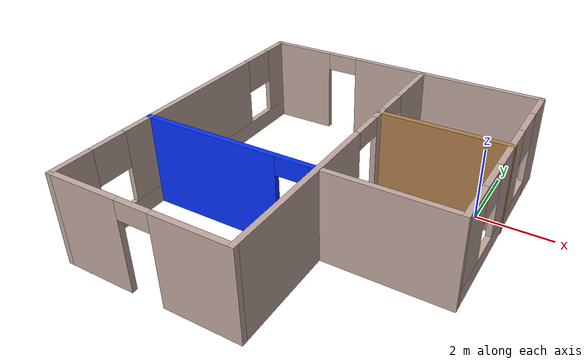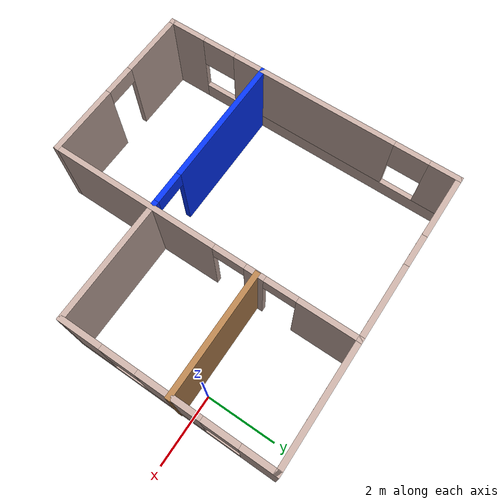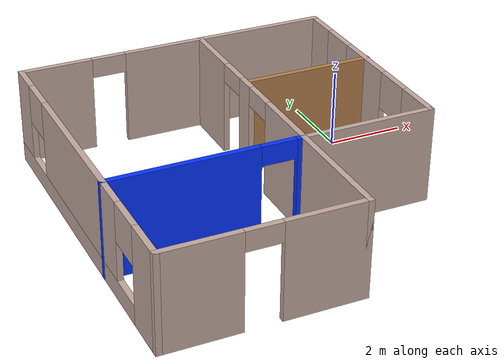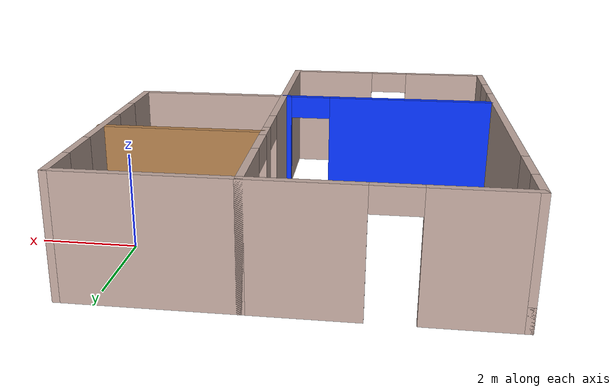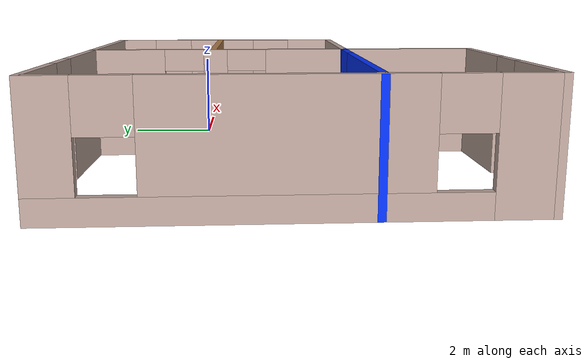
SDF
<?xml version='1.0'?>
<sdf version='1.7'>
  <model name='my_home'>
    <pose>-3.42702 -1.98412 0 0 -0 0</pose>
    <link name='Wall_0'>
      <pose>-1.68421 4.425 0 0 -0 0</pose>
      <visual name='Wall_0_Visual_0'>
        <pose>-1.54746 0 1.25 0 -0 0</pose>
        <geometry>
          <box>
            <size>1.90508 0.15 2.5</size>
          </box>
        </geometry>
        <material>
          <script>
            <uri>file://media/materials/scripts/gazebo.material</uri>
            <name>Gazebo/Grey</name>
          </script>
          <ambient>0.760784 0.662745 0.627451 1</ambient>
        </material>
        <meta>
          <layer>0</layer>
        </meta>
      </visual>
      <collision name='Wall_0_Collision_0'>
        <geometry>
          <box>
            <size>1.90508 0.15 2.5</size>
          </box>
        </geometry>
        <pose>-1.54746 0 1.25 0 -0 0</pose>
      </collision>
      <visual name='Wall_0_Visual_1'>
        <pose>1.40254 0 1.25 0 -0 0</pose>
        <geometry>
          <box>
            <size>2.19492 0.15 2.5</size>
          </box>
        </geometry>
        <material>
          <script>
            <uri>file://media/materials/scripts/gazebo.material</uri>
            <name>Gazebo/Grey</name>
          </script>
          <ambient>0.760784 0.662745 0.627451 1</ambient>
        </material>
        <meta>
          <layer>0</layer>
        </meta>
      </visual>
      <collision name='Wall_0_Collision_1'>
        <geometry>
          <box>
            <size>2.19492 0.15 2.5</size>
          </box>
        </geometry>
        <pose>1.40254 0 1.25 0 -0 0</pose>
      </collision>
      <visual name='Wall_0_Visual_2'>
        <pose>-0.144922 0 2.25 0 -0 0</pose>
        <geometry>
          <box>
            <size>0.9 0.15 0.5</size>
          </box>
        </geometry>
        <material>
          <script>
            <uri>file://media/materials/scripts/gazebo.material</uri>
            <name>Gazebo/Grey</name>
          </script>
          <ambient>0.760784 0.662745 0.627451 1</ambient>
        </material>
        <meta>
          <layer>0</layer>
        </meta>
      </visual>
      <collision name='Wall_0_Collision_2'>
        <geometry>
          <box>
            <size>0.9 0.15 0.5</size>
          </box>
        </geometry>
        <pose>-0.144922 0 2.25 0 -0 0</pose>
      </collision>
    </link>
    <link name='Wall_1'>
      <pose>0.740788 0 0 0 -0 -1.5708</pose>
      <visual name='Wall_1_Visual_0'>
        <pose>-3.63444 0 1.25 0 -0 0</pose>
        <geometry>
          <box>
            <size>1.73112 0.15 2.5</size>
          </box>
        </geometry>
        <material>
          <script>
            <uri>file://media/materials/scripts/gazebo.material</uri>
            <name>Gazebo/Grey</name>
          </script>
          <ambient>0.760784 0.662745 0.627451 1</ambient>
        </material>
        <meta>
          <layer>0</layer>
        </meta>
      </visual>
      <collision name='Wall_1_Collision_0'>
        <geometry>
          <box>
            <size>1.73112 0.15 2.5</size>
          </box>
        </geometry>
        <pose>-3.63444 0 1.25 0 -0 0</pose>
      </collision>
      <visual name='Wall_1_Visual_1'>
        <pose>-1.59479 0 1.25 0 -0 0</pose>
        <geometry>
          <box>
            <size>0.548177 0.15 2.5</size>
          </box>
        </geometry>
        <material>
          <script>
            <uri>file://media/materials/scripts/gazebo.material</uri>
            <name>Gazebo/Grey</name>
          </script>
          <ambient>0.760784 0.662745 0.627451 1</ambient>
        </material>
        <meta>
          <layer>0</layer>
        </meta>
      </visual>
      <collision name='Wall_1_Collision_1'>
        <geometry>
          <box>
            <size>0.548177 0.15 2.5</size>
          </box>
        </geometry>
        <pose>-1.59479 0 1.25 0 -0 0</pose>
      </collision>
      <visual name='Wall_1_Visual_2'>
        <pose>2.03965 0 1.25 0 -0 0</pose>
        <geometry>
          <box>
            <size>4.92071 0.15 2.5</size>
          </box>
        </geometry>
        <material>
          <script>
            <uri>file://media/materials/scripts/gazebo.material</uri>
            <name>Gazebo/Grey</name>
          </script>
          <ambient>0.760784 0.662745 0.627451 1</ambient>
        </material>
        <meta>
          <layer>0</layer>
        </meta>
      </visual>
      <collision name='Wall_1_Collision_2'>
        <geometry>
          <box>
            <size>4.92071 0.15 2.5</size>
          </box>
        </geometry>
        <pose>2.03965 0 1.25 0 -0 0</pose>
      </collision>
      <visual name='Wall_1_Visual_3'>
        <pose>-2.31888 0 2.25 0 -0 0</pose>
        <geometry>
          <box>
            <size>0.9 0.15 0.5</size>
          </box>
        </geometry>
        <material>
          <script>
            <uri>file://media/materials/scripts/gazebo.material</uri>
            <name>Gazebo/Grey</name>
          </script>
          <ambient>0.760784 0.662745 0.627451 1</ambient>
        </material>
        <meta>
          <layer>0</layer>
        </meta>
      </visual>
      <collision name='Wall_1_Collision_3'>
        <geometry>
          <box>
            <size>0.9 0.15 0.5</size>
          </box>
        </geometry>
        <pose>-2.31888 0 2.25 0 -0 0</pose>
      </collision>
      <visual name='Wall_1_Visual_4'>
        <pose>-0.870706 0 2.25 0 -0 0</pose>
        <geometry>
          <box>
            <size>0.9 0.15 0.5</size>
          </box>
        </geometry>
        <material>
          <script>
            <uri>file://media/materials/scripts/gazebo.material</uri>
            <name>Gazebo/Grey</name>
          </script>
          <ambient>0.760784 0.662745 0.627451 1</ambient>
        </material>
        <meta>
          <layer>0</layer>
        </meta>
      </visual>
      <collision name='Wall_1_Collision_4'>
        <geometry>
          <box>
            <size>0.9 0.15 0.5</size>
          </box>
        </geometry>
        <pose>-0.870706 0 2.25 0 -0 0</pose>
      </collision>
    </link>
    <link name='Wall_11'>
      <collision name='Wall_11_Collision'>
        <geometry>
          <box>
            <size>3.5 0.15 2.5</size>
          </box>
        </geometry>
        <pose>0 0 1.25 0 -0 0</pose>
      </collision>
      <visual name='Wall_11_Visual'>
        <pose>0 0 1.25 0 -0 0</pose>
        <geometry>
          <box>
            <size>3.5 0.15 2.5</size>
          </box>
        </geometry>
        <material>
          <script>
            <uri>file://media/materials/scripts/gazebo.material</uri>
            <name>Gazebo/Wood</name>
          </script>
          <ambient>0.760784 0.662745 0.627451 1</ambient>
        </material>
        <meta>
          <layer>0</layer>
        </meta>
      </visual>
      <pose>2.43421 1.64414 0 0 -0 3.14159</pose>
    </link>
    <link name='Wall_2'>
      <pose>-1.68421 -4.425 0 0 -0 3.14159</pose>
      <visual name='Wall_2_Visual_0'>
        <pose>-1.45282 0 1.25 0 -0 0</pose>
        <geometry>
          <box>
            <size>2.09435 0.15 2.5</size>
          </box>
        </geometry>
        <material>
          <script>
            <uri>file://media/materials/scripts/gazebo.material</uri>
            <name>Gazebo/Grey</name>
          </script>
          <ambient>0.760784 0.662745 0.627451 1</ambient>
        </material>
        <meta>
          <layer>0</layer>
        </meta>
      </visual>
      <collision name='Wall_2_Collision_0'>
        <geometry>
          <box>
            <size>2.09435 0.15 2.5</size>
          </box>
        </geometry>
        <pose>-1.45282 0 1.25 0 -0 0</pose>
      </collision>
      <visual name='Wall_2_Visual_1'>
        <pose>1.49718 0 1.25 0 -0 0</pose>
        <geometry>
          <box>
            <size>2.00565 0.15 2.5</size>
          </box>
        </geometry>
        <material>
          <script>
            <uri>file://media/materials/scripts/gazebo.material</uri>
            <name>Gazebo/Grey</name>
          </script>
          <ambient>0.760784 0.662745 0.627451 1</ambient>
        </material>
        <meta>
          <layer>0</layer>
        </meta>
      </visual>
      <collision name='Wall_2_Collision_1'>
        <geometry>
          <box>
            <size>2.00565 0.15 2.5</size>
          </box>
        </geometry>
        <pose>1.49718 0 1.25 0 -0 0</pose>
      </collision>
      <visual name='Wall_2_Visual_2'>
        <pose>0.044354 0 2.25 0 -0 0</pose>
        <geometry>
          <box>
            <size>0.9 0.15 0.5</size>
          </box>
        </geometry>
        <material>
          <script>
            <uri>file://media/materials/scripts/gazebo.material</uri>
            <name>Gazebo/Grey</name>
          </script>
          <ambient>0.760784 0.662745 0.627451 1</ambient>
        </material>
        <meta>
          <layer>0</layer>
        </meta>
      </visual>
      <collision name='Wall_2_Collision_2'>
        <geometry>
          <box>
            <size>0.9 0.15 0.5</size>
          </box>
        </geometry>
        <pose>0.044354 0 2.25 0 -0 0</pose>
      </collision>
    </link>
    <link name='Wall_3'>
      <pose>-4.10921 0 0 0 -0 1.5708</pose>
      <visual name='Wall_3_Visual_0'>
        <pose>-3.91509 0 1.25 0 -0 0</pose>
        <geometry>
          <box>
            <size>1.16981 0.15 2.5</size>
          </box>
        </geometry>
        <material>
          <script>
            <uri>file://media/materials/scripts/gazebo.material</uri>
            <name>Gazebo/Grey</name>
          </script>
          <ambient>0.760784 0.662745 0.627451 1</ambient>
        </material>
        <meta>
          <layer>0</layer>
        </meta>
      </visual>
      <collision name='Wall_3_Collision_0'>
        <geometry>
          <box>
            <size>1.16981 0.15 2.5</size>
          </box>
        </geometry>
        <pose>-3.91509 0 1.25 0 -0 0</pose>
      </collision>
      <visual name='Wall_3_Visual_1'>
        <pose>0.584905 0 0.25 0 -0 0</pose>
        <geometry>
          <box>
            <size>7.83019 0.15 0.5</size>
          </box>
        </geometry>
        <material>
          <script>
            <uri>file://media/materials/scripts/gazebo.material</uri>
            <name>Gazebo/Grey</name>
          </script>
          <ambient>0.760784 0.662745 0.627451 1</ambient>
        </material>
        <meta>
          <layer>0</layer>
        </meta>
      </visual>
      <collision name='Wall_3_Collision_1'>
        <geometry>
          <box>
            <size>7.83019 0.15 0.5</size>
          </box>
        </geometry>
        <pose>0.584905 0 0.25 0 -0 0</pose>
      </collision>
      <visual name='Wall_3_Visual_2'>
        <pose>0.136561 0 1.5 0 -0 0</pose>
        <geometry>
          <box>
            <size>4.9335 0.15 2</size>
          </box>
        </geometry>
        <material>
          <script>
            <uri>file://media/materials/scripts/gazebo.material</uri>
            <name>Gazebo/Grey</name>
          </script>
          <ambient>0.760784 0.662745 0.627451 1</ambient>
        </material>
        <meta>
          <layer>0</layer>
        </meta>
      </visual>
      <collision name='Wall_3_Collision_2'>
        <geometry>
          <box>
            <size>4.9335 0.15 2</size>
          </box>
        </geometry>
        <pose>0.136561 0 1.5 0 -0 0</pose>
      </collision>
      <visual name='Wall_3_Visual_3'>
        <pose>4.05166 0 1.5 0 -0 0</pose>
        <geometry>
          <box>
            <size>0.896687 0.15 2</size>
          </box>
        </geometry>
        <material>
          <script>
            <uri>file://media/materials/scripts/gazebo.material</uri>
            <name>Gazebo/Grey</name>
          </script>
          <ambient>0.760784 0.662745 0.627451 1</ambient>
        </material>
        <meta>
          <layer>0</layer>
        </meta>
      </visual>
      <collision name='Wall_3_Collision_3'>
        <geometry>
          <box>
            <size>0.896687 0.15 2</size>
          </box>
        </geometry>
        <pose>4.05166 0 1.5 0 -0 0</pose>
      </collision>
      <visual name='Wall_3_Visual_4'>
        <pose>-2.83019 0 2 0 -0 0</pose>
        <geometry>
          <box>
            <size>1 0.15 1</size>
          </box>
        </geometry>
        <material>
          <script>
            <uri>file://media/materials/scripts/gazebo.material</uri>
            <name>Gazebo/Grey</name>
          </script>
          <ambient>0.760784 0.662745 0.627451 1</ambient>
        </material>
        <meta>
          <layer>0</layer>
        </meta>
      </visual>
      <collision name='Wall_3_Collision_4'>
        <geometry>
          <box>
            <size>1 0.15 1</size>
          </box>
        </geometry>
        <pose>-2.83019 0 2 0 -0 0</pose>
      </collision>
      <visual name='Wall_3_Visual_5'>
        <pose>3.10331 0 2 0 -0 0</pose>
        <geometry>
          <box>
            <size>1 0.15 1</size>
          </box>
        </geometry>
        <material>
          <script>
            <uri>file://media/materials/scripts/gazebo.material</uri>
            <name>Gazebo/Grey</name>
          </script>
          <ambient>0.760784 0.662745 0.627451 1</ambient>
        </material>
        <meta>
          <layer>0</layer>
        </meta>
      </visual>
      <collision name='Wall_3_Collision_5'>
        <geometry>
          <box>
            <size>1 0.15 1</size>
          </box>
        </geometry>
        <pose>3.10331 0 2 0 -0 0</pose>
      </collision>
    </link>
    <link name='Wall_5'>
      <collision name='Wall_5_Collision'>
        <geometry>
          <box>
            <size>3.5 0.15 2.5</size>
          </box>
        </geometry>
        <pose>0 0 1.25 0 -0 0</pose>
      </collision>
      <visual name='Wall_5_Visual'>
        <pose>0 0 1.25 0 -0 0</pose>
        <geometry>
          <box>
            <size>3.5 0.15 2.5</size>
          </box>
        </geometry>
        <material>
          <script>
            <uri>file://media/materials/scripts/gazebo.material</uri>
            <name>Gazebo/Grey</name>
          </script>
          <ambient>0.760784 0.662745 0.627451 1</ambient>
        </material>
        <meta>
          <layer>0</layer>
        </meta>
      </visual>
      <pose>2.41579 4.425 0 0 -0 0</pose>
    </link>
    <link name='Wall_6'>
      <pose>4.09079 1.5 0 0 -0 -1.5708</pose>
      <visual name='Wall_6_Visual_0'>
        <pose>-2.49132 0 1.25 0 -0 0</pose>
        <geometry>
          <box>
            <size>1.01737 0.15 2.5</size>
          </box>
        </geometry>
        <material>
          <script>
            <uri>file://media/materials/scripts/gazebo.material</uri>
            <name>Gazebo/Grey</name>
          </script>
          <ambient>0.760784 0.662745 0.627451 1</ambient>
        </material>
        <meta>
          <layer>0</layer>
        </meta>
      </visual>
      <collision name='Wall_6_Collision_0'>
        <geometry>
          <box>
            <size>1.01737 0.15 2.5</size>
          </box>
        </geometry>
        <pose>-2.49132 0 1.25 0 -0 0</pose>
      </collision>
      <visual name='Wall_6_Visual_1'>
        <pose>0.508684 0 0.25 0 -0 0</pose>
        <geometry>
          <box>
            <size>4.98263 0.15 0.5</size>
          </box>
        </geometry>
        <material>
          <script>
            <uri>file://media/materials/scripts/gazebo.material</uri>
            <name>Gazebo/Grey</name>
          </script>
          <ambient>0.760784 0.662745 0.627451 1</ambient>
        </material>
        <meta>
          <layer>0</layer>
        </meta>
      </visual>
      <collision name='Wall_6_Collision_1'>
        <geometry>
          <box>
            <size>4.98263 0.15 0.5</size>
          </box>
        </geometry>
        <pose>0.508684 0 0.25 0 -0 0</pose>
      </collision>
      <visual name='Wall_6_Visual_2'>
        <pose>-0.104852 0 1.5 0 -0 0</pose>
        <geometry>
          <box>
            <size>1.75556 0.15 2</size>
          </box>
        </geometry>
        <material>
          <script>
            <uri>file://media/materials/scripts/gazebo.material</uri>
            <name>Gazebo/Grey</name>
          </script>
          <ambient>0.760784 0.662745 0.627451 1</ambient>
        </material>
        <meta>
          <layer>0</layer>
        </meta>
      </visual>
      <collision name='Wall_6_Collision_2'>
        <geometry>
          <box>
            <size>1.75556 0.15 2</size>
          </box>
        </geometry>
        <pose>-0.104852 0 1.5 0 -0 0</pose>
      </collision>
      <visual name='Wall_6_Visual_3'>
        <pose>2.38646 0 1.5 0 -0 0</pose>
        <geometry>
          <box>
            <size>1.22707 0.15 2</size>
          </box>
        </geometry>
        <material>
          <script>
            <uri>file://media/materials/scripts/gazebo.material</uri>
            <name>Gazebo/Grey</name>
          </script>
          <ambient>0.760784 0.662745 0.627451 1</ambient>
        </material>
        <meta>
          <layer>0</layer>
        </meta>
      </visual>
      <collision name='Wall_6_Collision_3'>
        <geometry>
          <box>
            <size>1.22707 0.15 2</size>
          </box>
        </geometry>
        <pose>2.38646 0 1.5 0 -0 0</pose>
      </collision>
      <visual name='Wall_6_Visual_4'>
        <pose>-1.48263 0 2 0 -0 0</pose>
        <geometry>
          <box>
            <size>1 0.15 1</size>
          </box>
        </geometry>
        <material>
          <script>
            <uri>file://media/materials/scripts/gazebo.material</uri>
            <name>Gazebo/Grey</name>
          </script>
          <ambient>0.760784 0.662745 0.627451 1</ambient>
        </material>
        <meta>
          <layer>0</layer>
        </meta>
      </visual>
      <collision name='Wall_6_Collision_4'>
        <geometry>
          <box>
            <size>1 0.15 1</size>
          </box>
        </geometry>
        <pose>-1.48263 0 2 0 -0 0</pose>
      </collision>
      <visual name='Wall_6_Visual_5'>
        <pose>1.27293 0 2 0 -0 0</pose>
        <geometry>
          <box>
            <size>1 0.15 1</size>
          </box>
        </geometry>
        <material>
          <script>
            <uri>file://media/materials/scripts/gazebo.material</uri>
            <name>Gazebo/Grey</name>
          </script>
          <ambient>0.760784 0.662745 0.627451 1</ambient>
        </material>
        <meta>
          <layer>0</layer>
        </meta>
      </visual>
      <collision name='Wall_6_Collision_5'>
        <geometry>
          <box>
            <size>1 0.15 1</size>
          </box>
        </geometry>
        <pose>1.27293 0 2 0 -0 0</pose>
      </collision>
    </link>
    <link name='Wall_7'>
      <collision name='Wall_7_Collision'>
        <geometry>
          <box>
            <size>3.5 0.15 2.5</size>
          </box>
        </geometry>
        <pose>0 0 1.25 0 -0 0</pose>
      </collision>
      <visual name='Wall_7_Visual'>
        <pose>0 0 1.25 0 -0 0</pose>
        <geometry>
          <box>
            <size>3.5 0.15 2.5</size>
          </box>
        </geometry>
        <material>
          <script>
            <uri>file://media/materials/scripts/gazebo.material</uri>
            <name>Gazebo/Grey</name>
          </script>
          <ambient>0.760784 0.662745 0.627451 1</ambient>
        </material>
        <meta>
          <layer>0</layer>
        </meta>
      </visual>
      <pose>2.41579 -1.425 0 0 -0 3.14159</pose>
    </link>
    <link name='Wall_9'>
      <pose>-1.68421 -1.425 0 0 -0 3.14159</pose>
      <visual name='Wall_9_Visual_0'>
        <pose>-2.36799 0 1.25 0 -0 0</pose>
        <geometry>
          <box>
            <size>0.26402 0.15 2.5</size>
          </box>
        </geometry>
        <material>
          <script>
            <uri>file://media/materials/scripts/gazebo.material</uri>
            <name>Gazebo/Grey</name>
          </script>
          <ambient>0.0156863 0.2 1 1</ambient>
        </material>
        <meta>
          <layer>0</layer>
        </meta>
      </visual>
      <collision name='Wall_9_Collision_0'>
        <geometry>
          <box>
            <size>0.26402 0.15 2.5</size>
          </box>
        </geometry>
        <pose>-2.36799 0 1.25 0 -0 0</pose>
      </collision>
      <visual name='Wall_9_Visual_1'>
        <pose>0.58201 0 1.25 0 -0 0</pose>
        <geometry>
          <box>
            <size>3.83598 0.15 2.5</size>
          </box>
        </geometry>
        <material>
          <script>
            <uri>file://media/materials/scripts/gazebo.material</uri>
            <name>Gazebo/Grey</name>
          </script>
          <ambient>0.0156863 0.2 1 1</ambient>
        </material>
        <meta>
          <layer>0</layer>
        </meta>
      </visual>
      <collision name='Wall_9_Collision_1'>
        <geometry>
          <box>
            <size>3.83598 0.15 2.5</size>
          </box>
        </geometry>
        <pose>0.58201 0 1.25 0 -0 0</pose>
      </collision>
      <visual name='Wall_9_Visual_2'>
        <pose>-1.78598 0 2.25 0 -0 0</pose>
        <geometry>
          <box>
            <size>0.9 0.15 0.5</size>
          </box>
        </geometry>
        <material>
          <script>
            <uri>file://media/materials/scripts/gazebo.material</uri>
            <name>Gazebo/Grey</name>
          </script>
          <ambient>0.0156863 0.2 1 1</ambient>
        </material>
        <meta>
          <layer>0</layer>
        </meta>
      </visual>
      <collision name='Wall_9_Collision_2'>
        <geometry>
          <box>
            <size>0.9 0.15 0.5</size>
          </box>
        </geometry>
        <pose>-1.78598 0 2.25 0 -0 0</pose>
      </collision>
    </link>
    <static>1</static>
  </model>
</sdf>
